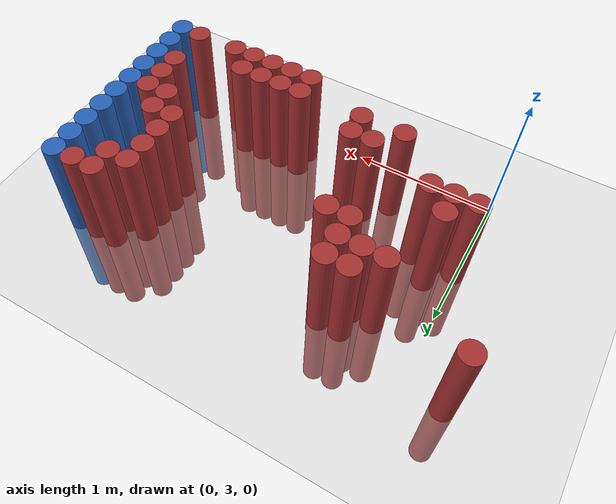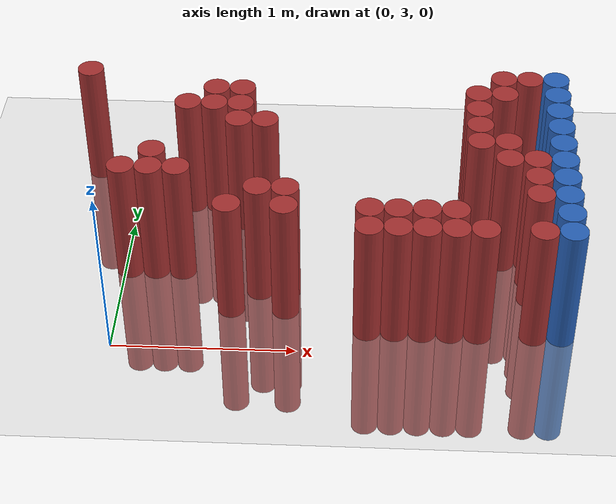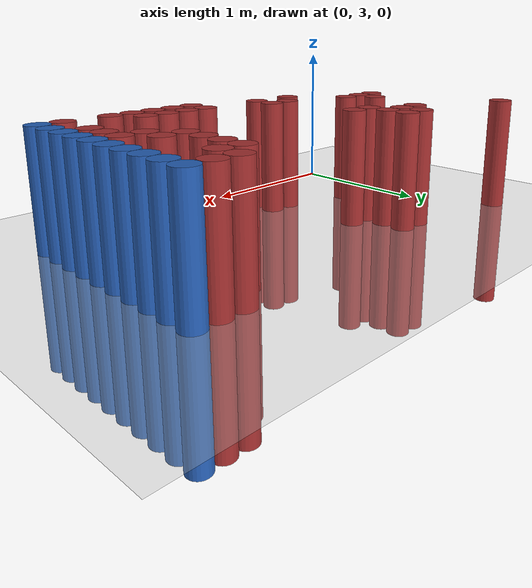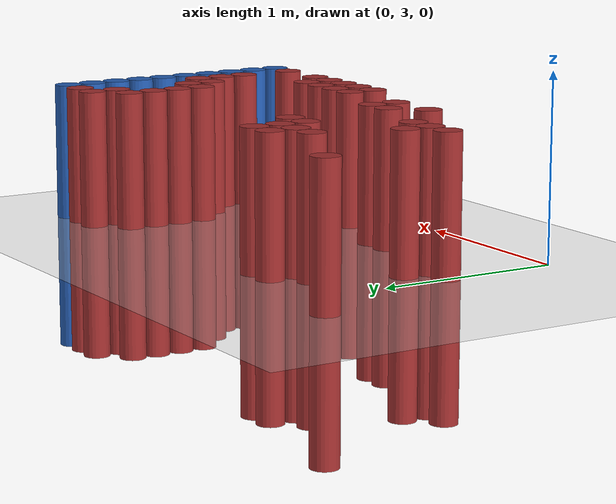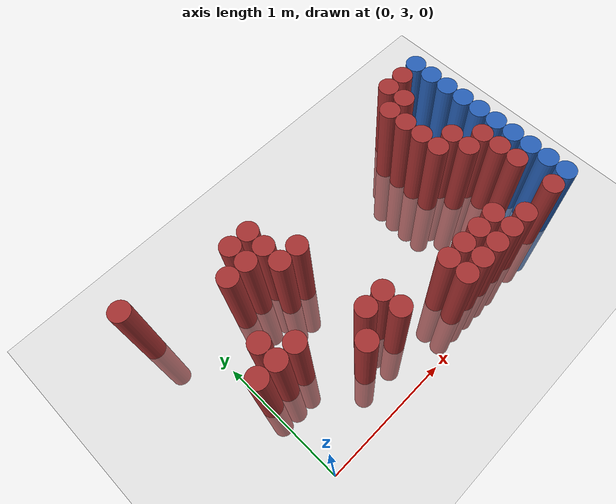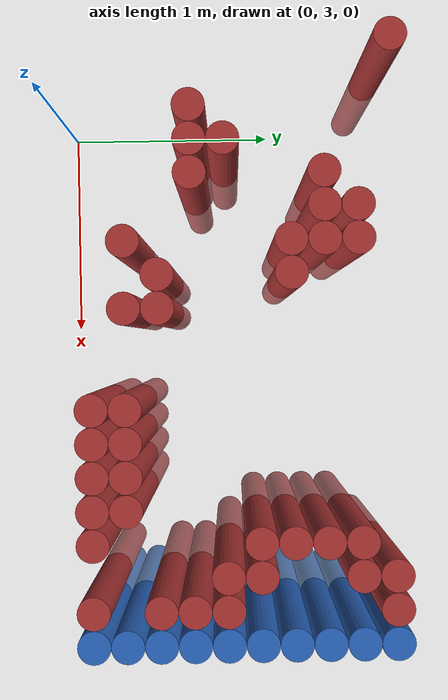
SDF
<sdf version="1.6">
 <world name="default">
  <model name="ground_plane">
   <static>1</static>
   <link name="link">
    <collision name="collision">
     <geometry><plane><normal>0 0 1</normal><size>100 100</size></plane></geometry>
     <surface><friction><ode><mu>100</mu><mu2>50</mu2></ode></friction></surface>
    </collision>
    <visual name="visual">
     <cast_shadows>0</cast_shadows>
     <geometry><plane><normal>0 0 1</normal><size>100 100</size></plane></geometry>
     <material>
      <script><uri>file://media/materials/scripts/gazebo.material</uri><name>Gazebo/Grey</name></script>
     </material>
    </visual>
   </link>
  </model>
  <model name="unit_cylinder_173">
   <static>1</static>
   <pose>-0.275000 4.525000 0.000000 0.000000 0.000000 0.000000</pose>
   <link name="link">
    <inertial>
     <mass>1</mass>
     <inertia><ixx>0.145833</ixx><ixy>0</ixy><ixz>0</ixz><iyy>0.145833</iyy><iyz>0</iyz><izz>0.125</izz></inertia>
    </inertial>
    <collision name="collision">
     <geometry><cylinder><radius>0.075000</radius><length>1.5</length></cylinder></geometry>
    </collision>
    <visual name="visual">
     <geometry><cylinder><radius>0.075000</radius><length>1.5</length></cylinder></geometry>
     <material>
      <ambient>0.648000 0.192000 0.192000 1</ambient>
      <diffuse>0.648000 0.192000 0.192000 1</diffuse>
     </material>
     <material>
      <script><name>Gazebo/Grey</name><uri>file://media/materials/scripts/gazebo.material</uri></script>
     </material>
    </visual>
   </link>
  </model>
  <model name="unit_cylinder_174">
   <static>1</static>
   <pose>0.025000 3.625000 0.000000 0.000000 0.000000 0.000000</pose>
   <link name="link">
    <inertial>
     <mass>1</mass>
     <inertia><ixx>0.145833</ixx><ixy>0</ixy><ixz>0</ixz><iyy>0.145833</iyy><iyz>0</iyz><izz>0.125</izz></inertia>
    </inertial>
    <collision name="collision">
     <geometry><cylinder><radius>0.075000</radius><length>1.5</length></cylinder></geometry>
    </collision>
    <visual name="visual">
     <geometry><cylinder><radius>0.075000</radius><length>1.5</length></cylinder></geometry>
     <material>
      <ambient>0.648000 0.192000 0.192000 1</ambient>
      <diffuse>0.648000 0.192000 0.192000 1</diffuse>
     </material>
     <material>
      <script><name>Gazebo/Grey</name><uri>file://media/materials/scripts/gazebo.material</uri></script>
     </material>
    </visual>
   </link>
  </model>
  <model name="unit_cylinder_176">
   <static>1</static>
   <pose>0.175000 3.625000 0.000000 0.000000 0.000000 0.000000</pose>
   <link name="link">
    <inertial>
     <mass>1</mass>
     <inertia><ixx>0.145833</ixx><ixy>0</ixy><ixz>0</ixz><iyy>0.145833</iyy><iyz>0</iyz><izz>0.125</izz></inertia>
    </inertial>
    <collision name="collision">
     <geometry><cylinder><radius>0.075000</radius><length>1.5</length></cylinder></geometry>
    </collision>
    <visual name="visual">
     <geometry><cylinder><radius>0.075000</radius><length>1.5</length></cylinder></geometry>
     <material>
      <ambient>0.648000 0.192000 0.192000 1</ambient>
      <diffuse>0.648000 0.192000 0.192000 1</diffuse>
     </material>
     <material>
      <script><name>Gazebo/Grey</name><uri>file://media/materials/scripts/gazebo.material</uri></script>
     </material>
    </visual>
   </link>
  </model>
  <model name="unit_cylinder_177">
   <static>1</static>
   <pose>0.175000 3.775000 0.000000 0.000000 0.000000 0.000000</pose>
   <link name="link">
    <inertial>
     <mass>1</mass>
     <inertia><ixx>0.145833</ixx><ixy>0</ixy><ixz>0</ixz><iyy>0.145833</iyy><iyz>0</iyz><izz>0.125</izz></inertia>
    </inertial>
    <collision name="collision">
     <geometry><cylinder><radius>0.075000</radius><length>1.5</length></cylinder></geometry>
    </collision>
    <visual name="visual">
     <geometry><cylinder><radius>0.075000</radius><length>1.5</length></cylinder></geometry>
     <material>
      <ambient>0.648000 0.192000 0.192000 1</ambient>
      <diffuse>0.648000 0.192000 0.192000 1</diffuse>
     </material>
     <material>
      <script><name>Gazebo/Grey</name><uri>file://media/materials/scripts/gazebo.material</uri></script>
     </material>
    </visual>
   </link>
  </model>
  <model name="unit_cylinder_180">
   <static>1</static>
   <pose>0.325000 3.625000 0.000000 0.000000 0.000000 0.000000</pose>
   <link name="link">
    <inertial>
     <mass>1</mass>
     <inertia><ixx>0.145833</ixx><ixy>0</ixy><ixz>0</ixz><iyy>0.145833</iyy><iyz>0</iyz><izz>0.125</izz></inertia>
    </inertial>
    <collision name="collision">
     <geometry><cylinder><radius>0.075000</radius><length>1.5</length></cylinder></geometry>
    </collision>
    <visual name="visual">
     <geometry><cylinder><radius>0.075000</radius><length>1.5</length></cylinder></geometry>
     <material>
      <ambient>0.648000 0.192000 0.192000 1</ambient>
      <diffuse>0.648000 0.192000 0.192000 1</diffuse>
     </material>
     <material>
      <script><name>Gazebo/Grey</name><uri>file://media/materials/scripts/gazebo.material</uri></script>
     </material>
    </visual>
   </link>
  </model>
  <model name="unit_cylinder_181">
   <static>1</static>
   <pose>0.325000 4.225000 0.000000 0.000000 0.000000 0.000000</pose>
   <link name="link">
    <inertial>
     <mass>1</mass>
     <inertia><ixx>0.145833</ixx><ixy>0</ixy><ixz>0</ixz><iyy>0.145833</iyy><iyz>0</iyz><izz>0.125</izz></inertia>
    </inertial>
    <collision name="collision">
     <geometry><cylinder><radius>0.075000</radius><length>1.5</length></cylinder></geometry>
    </collision>
    <visual name="visual">
     <geometry><cylinder><radius>0.075000</radius><length>1.5</length></cylinder></geometry>
     <material>
      <ambient>0.648000 0.192000 0.192000 1</ambient>
      <diffuse>0.648000 0.192000 0.192000 1</diffuse>
     </material>
     <material>
      <script><name>Gazebo/Grey</name><uri>file://media/materials/scripts/gazebo.material</uri></script>
     </material>
    </visual>
   </link>
  </model>
  <model name="unit_cylinder_184">
   <static>1</static>
   <pose>0.475000 4.225000 0.000000 0.000000 0.000000 0.000000</pose>
   <link name="link">
    <inertial>
     <mass>1</mass>
     <inertia><ixx>0.145833</ixx><ixy>0</ixy><ixz>0</ixz><iyy>0.145833</iyy><iyz>0</iyz><izz>0.125</izz></inertia>
    </inertial>
    <collision name="collision">
     <geometry><cylinder><radius>0.075000</radius><length>1.5</length></cylinder></geometry>
    </collision>
    <visual name="visual">
     <geometry><cylinder><radius>0.075000</radius><length>1.5</length></cylinder></geometry>
     <material>
      <ambient>0.648000 0.192000 0.192000 1</ambient>
      <diffuse>0.648000 0.192000 0.192000 1</diffuse>
     </material>
     <material>
      <script><name>Gazebo/Grey</name><uri>file://media/materials/scripts/gazebo.material</uri></script>
     </material>
    </visual>
   </link>
  </model>
  <model name="unit_cylinder_185">
   <static>1</static>
   <pose>0.475000 4.375000 0.000000 0.000000 0.000000 0.000000</pose>
   <link name="link">
    <inertial>
     <mass>1</mass>
     <inertia><ixx>0.145833</ixx><ixy>0</ixy><ixz>0</ixz><iyy>0.145833</iyy><iyz>0</iyz><izz>0.125</izz></inertia>
    </inertial>
    <collision name="collision">
     <geometry><cylinder><radius>0.075000</radius><length>1.5</length></cylinder></geometry>
    </collision>
    <visual name="visual">
     <geometry><cylinder><radius>0.075000</radius><length>1.5</length></cylinder></geometry>
     <material>
      <ambient>0.648000 0.192000 0.192000 1</ambient>
      <diffuse>0.648000 0.192000 0.192000 1</diffuse>
     </material>
     <material>
      <script><name>Gazebo/Grey</name><uri>file://media/materials/scripts/gazebo.material</uri></script>
     </material>
    </visual>
   </link>
  </model>
  <model name="unit_cylinder_186">
   <static>1</static>
   <pose>0.625000 3.325000 0.000000 0.000000 0.000000 0.000000</pose>
   <link name="link">
    <inertial>
     <mass>1</mass>
     <inertia><ixx>0.145833</ixx><ixy>0</ixy><ixz>0</ixz><iyy>0.145833</iyy><iyz>0</iyz><izz>0.125</izz></inertia>
    </inertial>
    <collision name="collision">
     <geometry><cylinder><radius>0.075000</radius><length>1.5</length></cylinder></geometry>
    </collision>
    <visual name="visual">
     <geometry><cylinder><radius>0.075000</radius><length>1.5</length></cylinder></geometry>
     <material>
      <ambient>0.648000 0.192000 0.192000 1</ambient>
      <diffuse>0.648000 0.192000 0.192000 1</diffuse>
     </material>
     <material>
      <script><name>Gazebo/Grey</name><uri>file://media/materials/scripts/gazebo.material</uri></script>
     </material>
    </visual>
   </link>
  </model>
  <model name="unit_cylinder_187">
   <static>1</static>
   <pose>0.625000 4.075000 0.000000 0.000000 0.000000 0.000000</pose>
   <link name="link">
    <inertial>
     <mass>1</mass>
     <inertia><ixx>0.145833</ixx><ixy>0</ixy><ixz>0</ixz><iyy>0.145833</iyy><iyz>0</iyz><izz>0.125</izz></inertia>
    </inertial>
    <collision name="collision">
     <geometry><cylinder><radius>0.075000</radius><length>1.5</length></cylinder></geometry>
    </collision>
    <visual name="visual">
     <geometry><cylinder><radius>0.075000</radius><length>1.5</length></cylinder></geometry>
     <material>
      <ambient>0.648000 0.192000 0.192000 1</ambient>
      <diffuse>0.648000 0.192000 0.192000 1</diffuse>
     </material>
     <material>
      <script><name>Gazebo/Grey</name><uri>file://media/materials/scripts/gazebo.material</uri></script>
     </material>
    </visual>
   </link>
  </model>
  <model name="unit_cylinder_188">
   <static>1</static>
   <pose>0.625000 4.225000 0.000000 0.000000 0.000000 0.000000</pose>
   <link name="link">
    <inertial>
     <mass>1</mass>
     <inertia><ixx>0.145833</ixx><ixy>0</ixy><ixz>0</ixz><iyy>0.145833</iyy><iyz>0</iyz><izz>0.125</izz></inertia>
    </inertial>
    <collision name="collision">
     <geometry><cylinder><radius>0.075000</radius><length>1.5</length></cylinder></geometry>
    </collision>
    <visual name="visual">
     <geometry><cylinder><radius>0.075000</radius><length>1.5</length></cylinder></geometry>
     <material>
      <ambient>0.648000 0.192000 0.192000 1</ambient>
      <diffuse>0.648000 0.192000 0.192000 1</diffuse>
     </material>
     <material>
      <script><name>Gazebo/Grey</name><uri>file://media/materials/scripts/gazebo.material</uri></script>
     </material>
    </visual>
   </link>
  </model>
  <model name="unit_cylinder_189">
   <static>1</static>
   <pose>0.625000 4.375000 0.000000 0.000000 0.000000 0.000000</pose>
   <link name="link">
    <inertial>
     <mass>1</mass>
     <inertia><ixx>0.145833</ixx><ixy>0</ixy><ixz>0</ixz><iyy>0.145833</iyy><iyz>0</iyz><izz>0.125</izz></inertia>
    </inertial>
    <collision name="collision">
     <geometry><cylinder><radius>0.075000</radius><length>1.5</length></cylinder></geometry>
    </collision>
    <visual name="visual">
     <geometry><cylinder><radius>0.075000</radius><length>1.5</length></cylinder></geometry>
     <material>
      <ambient>0.648000 0.192000 0.192000 1</ambient>
      <diffuse>0.648000 0.192000 0.192000 1</diffuse>
     </material>
     <material>
      <script><name>Gazebo/Grey</name><uri>file://media/materials/scripts/gazebo.material</uri></script>
     </material>
    </visual>
   </link>
  </model>
  <model name="unit_cylinder_192">
   <static>1</static>
   <pose>0.775000 3.475000 0.000000 0.000000 0.000000 0.000000</pose>
   <link name="link">
    <inertial>
     <mass>1</mass>
     <inertia><ixx>0.145833</ixx><ixy>0</ixy><ixz>0</ixz><iyy>0.145833</iyy><iyz>0</iyz><izz>0.125</izz></inertia>
    </inertial>
    <collision name="collision">
     <geometry><cylinder><radius>0.075000</radius><length>1.5</length></cylinder></geometry>
    </collision>
    <visual name="visual">
     <geometry><cylinder><radius>0.075000</radius><length>1.5</length></cylinder></geometry>
     <material>
      <ambient>0.648000 0.192000 0.192000 1</ambient>
      <diffuse>0.648000 0.192000 0.192000 1</diffuse>
     </material>
     <material>
      <script><name>Gazebo/Grey</name><uri>file://media/materials/scripts/gazebo.material</uri></script>
     </material>
    </visual>
   </link>
  </model>
  <model name="unit_cylinder_193">
   <static>1</static>
   <pose>0.775000 4.075000 0.000000 0.000000 0.000000 0.000000</pose>
   <link name="link">
    <inertial>
     <mass>1</mass>
     <inertia><ixx>0.145833</ixx><ixy>0</ixy><ixz>0</ixz><iyy>0.145833</iyy><iyz>0</iyz><izz>0.125</izz></inertia>
    </inertial>
    <collision name="collision">
     <geometry><cylinder><radius>0.075000</radius><length>1.5</length></cylinder></geometry>
    </collision>
    <visual name="visual">
     <geometry><cylinder><radius>0.075000</radius><length>1.5</length></cylinder></geometry>
     <material>
      <ambient>0.648000 0.192000 0.192000 1</ambient>
      <diffuse>0.648000 0.192000 0.192000 1</diffuse>
     </material>
     <material>
      <script><name>Gazebo/Grey</name><uri>file://media/materials/scripts/gazebo.material</uri></script>
     </material>
    </visual>
   </link>
  </model>
  <model name="unit_cylinder_198">
   <static>1</static>
   <pose>0.925000 3.325000 0.000000 0.000000 0.000000 0.000000</pose>
   <link name="link">
    <inertial>
     <mass>1</mass>
     <inertia><ixx>0.145833</ixx><ixy>0</ixy><ixz>0</ixz><iyy>0.145833</iyy><iyz>0</iyz><izz>0.125</izz></inertia>
    </inertial>
    <collision name="collision">
     <geometry><cylinder><radius>0.075000</radius><length>1.5</length></cylinder></geometry>
    </collision>
    <visual name="visual">
     <geometry><cylinder><radius>0.075000</radius><length>1.5</length></cylinder></geometry>
     <material>
      <ambient>0.648000 0.192000 0.192000 1</ambient>
      <diffuse>0.648000 0.192000 0.192000 1</diffuse>
     </material>
     <material>
      <script><name>Gazebo/Grey</name><uri>file://media/materials/scripts/gazebo.material</uri></script>
     </material>
    </visual>
   </link>
  </model>
  <model name="unit_cylinder_199">
   <static>1</static>
   <pose>0.925000 3.475000 0.000000 0.000000 0.000000 0.000000</pose>
   <link name="link">
    <inertial>
     <mass>1</mass>
     <inertia><ixx>0.145833</ixx><ixy>0</ixy><ixz>0</ixz><iyy>0.145833</iyy><iyz>0</iyz><izz>0.125</izz></inertia>
    </inertial>
    <collision name="collision">
     <geometry><cylinder><radius>0.075000</radius><length>1.5</length></cylinder></geometry>
    </collision>
    <visual name="visual">
     <geometry><cylinder><radius>0.075000</radius><length>1.5</length></cylinder></geometry>
     <material>
      <ambient>0.648000 0.192000 0.192000 1</ambient>
      <diffuse>0.648000 0.192000 0.192000 1</diffuse>
     </material>
     <material>
      <script><name>Gazebo/Grey</name><uri>file://media/materials/scripts/gazebo.material</uri></script>
     </material>
    </visual>
   </link>
  </model>
  <model name="unit_cylinder_212">
   <static>1</static>
   <pose>1.375000 3.175000 0.000000 0.000000 0.000000 0.000000</pose>
   <link name="link">
    <inertial>
     <mass>1</mass>
     <inertia><ixx>0.145833</ixx><ixy>0</ixy><ixz>0</ixz><iyy>0.145833</iyy><iyz>0</iyz><izz>0.125</izz></inertia>
    </inertial>
    <collision name="collision">
     <geometry><cylinder><radius>0.075000</radius><length>1.5</length></cylinder></geometry>
    </collision>
    <visual name="visual">
     <geometry><cylinder><radius>0.075000</radius><length>1.5</length></cylinder></geometry>
     <material>
      <ambient>0.648000 0.192000 0.192000 1</ambient>
      <diffuse>0.648000 0.192000 0.192000 1</diffuse>
     </material>
     <material>
      <script><name>Gazebo/Grey</name><uri>file://media/materials/scripts/gazebo.material</uri></script>
     </material>
    </visual>
   </link>
  </model>
  <model name="unit_cylinder_213">
   <static>1</static>
   <pose>1.375000 3.325000 0.000000 0.000000 0.000000 0.000000</pose>
   <link name="link">
    <inertial>
     <mass>1</mass>
     <inertia><ixx>0.145833</ixx><ixy>0</ixy><ixz>0</ixz><iyy>0.145833</iyy><iyz>0</iyz><izz>0.125</izz></inertia>
    </inertial>
    <collision name="collision">
     <geometry><cylinder><radius>0.075000</radius><length>1.5</length></cylinder></geometry>
    </collision>
    <visual name="visual">
     <geometry><cylinder><radius>0.075000</radius><length>1.5</length></cylinder></geometry>
     <material>
      <ambient>0.648000 0.192000 0.192000 1</ambient>
      <diffuse>0.648000 0.192000 0.192000 1</diffuse>
     </material>
     <material>
      <script><name>Gazebo/Grey</name><uri>file://media/materials/scripts/gazebo.material</uri></script>
     </material>
    </visual>
   </link>
  </model>
  <model name="unit_cylinder_215">
   <static>1</static>
   <pose>1.525000 3.175000 0.000000 0.000000 0.000000 0.000000</pose>
   <link name="link">
    <inertial>
     <mass>1</mass>
     <inertia><ixx>0.145833</ixx><ixy>0</ixy><ixz>0</ixz><iyy>0.145833</iyy><iyz>0</iyz><izz>0.125</izz></inertia>
    </inertial>
    <collision name="collision">
     <geometry><cylinder><radius>0.075000</radius><length>1.5</length></cylinder></geometry>
    </collision>
    <visual name="visual">
     <geometry><cylinder><radius>0.075000</radius><length>1.5</length></cylinder></geometry>
     <material>
      <ambient>0.648000 0.192000 0.192000 1</ambient>
      <diffuse>0.648000 0.192000 0.192000 1</diffuse>
     </material>
     <material>
      <script><name>Gazebo/Grey</name><uri>file://media/materials/scripts/gazebo.material</uri></script>
     </material>
    </visual>
   </link>
  </model>
  <model name="unit_cylinder_216">
   <static>1</static>
   <pose>1.525000 3.325000 0.000000 0.000000 0.000000 0.000000</pose>
   <link name="link">
    <inertial>
     <mass>1</mass>
     <inertia><ixx>0.145833</ixx><ixy>0</ixy><ixz>0</ixz><iyy>0.145833</iyy><iyz>0</iyz><izz>0.125</izz></inertia>
    </inertial>
    <collision name="collision">
     <geometry><cylinder><radius>0.075000</radius><length>1.5</length></cylinder></geometry>
    </collision>
    <visual name="visual">
     <geometry><cylinder><radius>0.075000</radius><length>1.5</length></cylinder></geometry>
     <material>
      <ambient>0.648000 0.192000 0.192000 1</ambient>
      <diffuse>0.648000 0.192000 0.192000 1</diffuse>
     </material>
     <material>
      <script><name>Gazebo/Grey</name><uri>file://media/materials/scripts/gazebo.material</uri></script>
     </material>
    </visual>
   </link>
  </model>
  <model name="unit_cylinder_218">
   <static>1</static>
   <pose>1.675000 3.175000 0.000000 0.000000 0.000000 0.000000</pose>
   <link name="link">
    <inertial>
     <mass>1</mass>
     <inertia><ixx>0.145833</ixx><ixy>0</ixy><ixz>0</ixz><iyy>0.145833</iyy><iyz>0</iyz><izz>0.125</izz></inertia>
    </inertial>
    <collision name="collision">
     <geometry><cylinder><radius>0.075000</radius><length>1.5</length></cylinder></geometry>
    </collision>
    <visual name="visual">
     <geometry><cylinder><radius>0.075000</radius><length>1.5</length></cylinder></geometry>
     <material>
      <ambient>0.648000 0.192000 0.192000 1</ambient>
      <diffuse>0.648000 0.192000 0.192000 1</diffuse>
     </material>
     <material>
      <script><name>Gazebo/Grey</name><uri>file://media/materials/scripts/gazebo.material</uri></script>
     </material>
    </visual>
   </link>
  </model>
  <model name="unit_cylinder_219">
   <static>1</static>
   <pose>1.675000 3.325000 0.000000 0.000000 0.000000 0.000000</pose>
   <link name="link">
    <inertial>
     <mass>1</mass>
     <inertia><ixx>0.145833</ixx><ixy>0</ixy><ixz>0</ixz><iyy>0.145833</iyy><iyz>0</iyz><izz>0.125</izz></inertia>
    </inertial>
    <collision name="collision">
     <geometry><cylinder><radius>0.075000</radius><length>1.5</length></cylinder></geometry>
    </collision>
    <visual name="visual">
     <geometry><cylinder><radius>0.075000</radius><length>1.5</length></cylinder></geometry>
     <material>
      <ambient>0.648000 0.192000 0.192000 1</ambient>
      <diffuse>0.648000 0.192000 0.192000 1</diffuse>
     </material>
     <material>
      <script><name>Gazebo/Grey</name><uri>file://media/materials/scripts/gazebo.material</uri></script>
     </material>
    </visual>
   </link>
  </model>
  <model name="unit_cylinder_223">
   <static>1</static>
   <pose>1.825000 3.175000 0.000000 0.000000 0.000000 0.000000</pose>
   <link name="link">
    <inertial>
     <mass>1</mass>
     <inertia><ixx>0.145833</ixx><ixy>0</ixy><ixz>0</ixz><iyy>0.145833</iyy><iyz>0</iyz><izz>0.125</izz></inertia>
    </inertial>
    <collision name="collision">
     <geometry><cylinder><radius>0.075000</radius><length>1.5</length></cylinder></geometry>
    </collision>
    <visual name="visual">
     <geometry><cylinder><radius>0.075000</radius><length>1.5</length></cylinder></geometry>
     <material>
      <ambient>0.648000 0.192000 0.192000 1</ambient>
      <diffuse>0.648000 0.192000 0.192000 1</diffuse>
     </material>
     <material>
      <script><name>Gazebo/Grey</name><uri>file://media/materials/scripts/gazebo.material</uri></script>
     </material>
    </visual>
   </link>
  </model>
  <model name="unit_cylinder_224">
   <static>1</static>
   <pose>1.825000 3.325000 0.000000 0.000000 0.000000 0.000000</pose>
   <link name="link">
    <inertial>
     <mass>1</mass>
     <inertia><ixx>0.145833</ixx><ixy>0</ixy><ixz>0</ixz><iyy>0.145833</iyy><iyz>0</iyz><izz>0.125</izz></inertia>
    </inertial>
    <collision name="collision">
     <geometry><cylinder><radius>0.075000</radius><length>1.5</length></cylinder></geometry>
    </collision>
    <visual name="visual">
     <geometry><cylinder><radius>0.075000</radius><length>1.5</length></cylinder></geometry>
     <material>
      <ambient>0.648000 0.192000 0.192000 1</ambient>
      <diffuse>0.648000 0.192000 0.192000 1</diffuse>
     </material>
     <material>
      <script><name>Gazebo/Grey</name><uri>file://media/materials/scripts/gazebo.material</uri></script>
     </material>
    </visual>
   </link>
  </model>
  <model name="unit_cylinder_228">
   <static>1</static>
   <pose>1.975000 3.175000 0.000000 0.000000 0.000000 0.000000</pose>
   <link name="link">
    <inertial>
     <mass>1</mass>
     <inertia><ixx>0.145833</ixx><ixy>0</ixy><ixz>0</ixz><iyy>0.145833</iyy><iyz>0</iyz><izz>0.125</izz></inertia>
    </inertial>
    <collision name="collision">
     <geometry><cylinder><radius>0.075000</radius><length>1.5</length></cylinder></geometry>
    </collision>
    <visual name="visual">
     <geometry><cylinder><radius>0.075000</radius><length>1.5</length></cylinder></geometry>
     <material>
      <ambient>0.648000 0.192000 0.192000 1</ambient>
      <diffuse>0.648000 0.192000 0.192000 1</diffuse>
     </material>
     <material>
      <script><name>Gazebo/Grey</name><uri>file://media/materials/scripts/gazebo.material</uri></script>
     </material>
    </visual>
   </link>
  </model>
  <model name="unit_cylinder_229">
   <static>1</static>
   <pose>1.975000 3.925000 0.000000 0.000000 0.000000 0.000000</pose>
   <link name="link">
    <inertial>
     <mass>1</mass>
     <inertia><ixx>0.145833</ixx><ixy>0</ixy><ixz>0</ixz><iyy>0.145833</iyy><iyz>0</iyz><izz>0.125</izz></inertia>
    </inertial>
    <collision name="collision">
     <geometry><cylinder><radius>0.075000</radius><length>1.5</length></cylinder></geometry>
    </collision>
    <visual name="visual">
     <geometry><cylinder><radius>0.075000</radius><length>1.5</length></cylinder></geometry>
     <material>
      <ambient>0.648000 0.192000 0.192000 1</ambient>
      <diffuse>0.648000 0.192000 0.192000 1</diffuse>
     </material>
     <material>
      <script><name>Gazebo/Grey</name><uri>file://media/materials/scripts/gazebo.material</uri></script>
     </material>
    </visual>
   </link>
  </model>
  <model name="unit_cylinder_230">
   <static>1</static>
   <pose>1.975000 4.075000 0.000000 0.000000 0.000000 0.000000</pose>
   <link name="link">
    <inertial>
     <mass>1</mass>
     <inertia><ixx>0.145833</ixx><ixy>0</ixy><ixz>0</ixz><iyy>0.145833</iyy><iyz>0</iyz><izz>0.125</izz></inertia>
    </inertial>
    <collision name="collision">
     <geometry><cylinder><radius>0.075000</radius><length>1.5</length></cylinder></geometry>
    </collision>
    <visual name="visual">
     <geometry><cylinder><radius>0.075000</radius><length>1.5</length></cylinder></geometry>
     <material>
      <ambient>0.648000 0.192000 0.192000 1</ambient>
      <diffuse>0.648000 0.192000 0.192000 1</diffuse>
     </material>
     <material>
      <script><name>Gazebo/Grey</name><uri>file://media/materials/scripts/gazebo.material</uri></script>
     </material>
    </visual>
   </link>
  </model>
  <model name="unit_cylinder_231">
   <static>1</static>
   <pose>1.975000 4.225000 0.000000 0.000000 0.000000 0.000000</pose>
   <link name="link">
    <inertial>
     <mass>1</mass>
     <inertia><ixx>0.145833</ixx><ixy>0</ixy><ixz>0</ixz><iyy>0.145833</iyy><iyz>0</iyz><izz>0.125</izz></inertia>
    </inertial>
    <collision name="collision">
     <geometry><cylinder><radius>0.075000</radius><length>1.5</length></cylinder></geometry>
    </collision>
    <visual name="visual">
     <geometry><cylinder><radius>0.075000</radius><length>1.5</length></cylinder></geometry>
     <material>
      <ambient>0.648000 0.192000 0.192000 1</ambient>
      <diffuse>0.648000 0.192000 0.192000 1</diffuse>
     </material>
     <material>
      <script><name>Gazebo/Grey</name><uri>file://media/materials/scripts/gazebo.material</uri></script>
     </material>
    </visual>
   </link>
  </model>
  <model name="unit_cylinder_232">
   <static>1</static>
   <pose>1.975000 4.375000 0.000000 0.000000 0.000000 0.000000</pose>
   <link name="link">
    <inertial>
     <mass>1</mass>
     <inertia><ixx>0.145833</ixx><ixy>0</ixy><ixz>0</ixz><iyy>0.145833</iyy><iyz>0</iyz><izz>0.125</izz></inertia>
    </inertial>
    <collision name="collision">
     <geometry><cylinder><radius>0.075000</radius><length>1.5</length></cylinder></geometry>
    </collision>
    <visual name="visual">
     <geometry><cylinder><radius>0.075000</radius><length>1.5</length></cylinder></geometry>
     <material>
      <ambient>0.648000 0.192000 0.192000 1</ambient>
      <diffuse>0.648000 0.192000 0.192000 1</diffuse>
     </material>
     <material>
      <script><name>Gazebo/Grey</name><uri>file://media/materials/scripts/gazebo.material</uri></script>
     </material>
    </visual>
   </link>
  </model>
  <model name="unit_cylinder_239">
   <static>1</static>
   <pose>2.125000 3.775000 0.000000 0.000000 0.000000 0.000000</pose>
   <link name="link">
    <inertial>
     <mass>1</mass>
     <inertia><ixx>0.145833</ixx><ixy>0</ixy><ixz>0</ixz><iyy>0.145833</iyy><iyz>0</iyz><izz>0.125</izz></inertia>
    </inertial>
    <collision name="collision">
     <geometry><cylinder><radius>0.075000</radius><length>1.5</length></cylinder></geometry>
    </collision>
    <visual name="visual">
     <geometry><cylinder><radius>0.075000</radius><length>1.5</length></cylinder></geometry>
     <material>
      <ambient>0.648000 0.192000 0.192000 1</ambient>
      <diffuse>0.648000 0.192000 0.192000 1</diffuse>
     </material>
     <material>
      <script><name>Gazebo/Grey</name><uri>file://media/materials/scripts/gazebo.material</uri></script>
     </material>
    </visual>
   </link>
  </model>
  <model name="unit_cylinder_240">
   <static>1</static>
   <pose>2.125000 3.925000 0.000000 0.000000 0.000000 0.000000</pose>
   <link name="link">
    <inertial>
     <mass>1</mass>
     <inertia><ixx>0.145833</ixx><ixy>0</ixy><ixz>0</ixz><iyy>0.145833</iyy><iyz>0</iyz><izz>0.125</izz></inertia>
    </inertial>
    <collision name="collision">
     <geometry><cylinder><radius>0.075000</radius><length>1.5</length></cylinder></geometry>
    </collision>
    <visual name="visual">
     <geometry><cylinder><radius>0.075000</radius><length>1.5</length></cylinder></geometry>
     <material>
      <ambient>0.648000 0.192000 0.192000 1</ambient>
      <diffuse>0.648000 0.192000 0.192000 1</diffuse>
     </material>
     <material>
      <script><name>Gazebo/Grey</name><uri>file://media/materials/scripts/gazebo.material</uri></script>
     </material>
    </visual>
   </link>
  </model>
  <model name="unit_cylinder_241">
   <static>1</static>
   <pose>2.125000 4.375000 0.000000 0.000000 0.000000 0.000000</pose>
   <link name="link">
    <inertial>
     <mass>1</mass>
     <inertia><ixx>0.145833</ixx><ixy>0</ixy><ixz>0</ixz><iyy>0.145833</iyy><iyz>0</iyz><izz>0.125</izz></inertia>
    </inertial>
    <collision name="collision">
     <geometry><cylinder><radius>0.075000</radius><length>1.5</length></cylinder></geometry>
    </collision>
    <visual name="visual">
     <geometry><cylinder><radius>0.075000</radius><length>1.5</length></cylinder></geometry>
     <material>
      <ambient>0.648000 0.192000 0.192000 1</ambient>
      <diffuse>0.648000 0.192000 0.192000 1</diffuse>
     </material>
     <material>
      <script><name>Gazebo/Grey</name><uri>file://media/materials/scripts/gazebo.material</uri></script>
     </material>
    </visual>
   </link>
  </model>
  <model name="unit_cylinder_242">
   <static>1</static>
   <pose>2.125000 4.525000 0.000000 0.000000 0.000000 0.000000</pose>
   <link name="link">
    <inertial>
     <mass>1</mass>
     <inertia><ixx>0.145833</ixx><ixy>0</ixy><ixz>0</ixz><iyy>0.145833</iyy><iyz>0</iyz><izz>0.125</izz></inertia>
    </inertial>
    <collision name="collision">
     <geometry><cylinder><radius>0.075000</radius><length>1.5</length></cylinder></geometry>
    </collision>
    <visual name="visual">
     <geometry><cylinder><radius>0.075000</radius><length>1.5</length></cylinder></geometry>
     <material>
      <ambient>0.648000 0.192000 0.192000 1</ambient>
      <diffuse>0.648000 0.192000 0.192000 1</diffuse>
     </material>
     <material>
      <script><name>Gazebo/Grey</name><uri>file://media/materials/scripts/gazebo.material</uri></script>
     </material>
    </visual>
   </link>
  </model>
  <model name="unit_cylinder_252">
   <static>1</static>
   <pose>2.275000 3.175000 0.000000 0.000000 0.000000 0.000000</pose>
   <link name="link">
    <inertial>
     <mass>1</mass>
     <inertia><ixx>0.145833</ixx><ixy>0</ixy><ixz>0</ixz><iyy>0.145833</iyy><iyz>0</iyz><izz>0.125</izz></inertia>
    </inertial>
    <collision name="collision">
     <geometry><cylinder><radius>0.075000</radius><length>1.5</length></cylinder></geometry>
    </collision>
    <visual name="visual">
     <geometry><cylinder><radius>0.075000</radius><length>1.5</length></cylinder></geometry>
     <material>
      <ambient>0.648000 0.192000 0.192000 1</ambient>
      <diffuse>0.648000 0.192000 0.192000 1</diffuse>
     </material>
     <material>
      <script><name>Gazebo/Grey</name><uri>file://media/materials/scripts/gazebo.material</uri></script>
     </material>
    </visual>
   </link>
  </model>
  <model name="unit_cylinder_253">
   <static>1</static>
   <pose>2.275000 3.475000 0.000000 0.000000 0.000000 0.000000</pose>
   <link name="link">
    <inertial>
     <mass>1</mass>
     <inertia><ixx>0.145833</ixx><ixy>0</ixy><ixz>0</ixz><iyy>0.145833</iyy><iyz>0</iyz><izz>0.125</izz></inertia>
    </inertial>
    <collision name="collision">
     <geometry><cylinder><radius>0.075000</radius><length>1.5</length></cylinder></geometry>
    </collision>
    <visual name="visual">
     <geometry><cylinder><radius>0.075000</radius><length>1.5</length></cylinder></geometry>
     <material>
      <ambient>0.648000 0.192000 0.192000 1</ambient>
      <diffuse>0.648000 0.192000 0.192000 1</diffuse>
     </material>
     <material>
      <script><name>Gazebo/Grey</name><uri>file://media/materials/scripts/gazebo.material</uri></script>
     </material>
    </visual>
   </link>
  </model>
  <model name="unit_cylinder_254">
   <static>1</static>
   <pose>2.275000 3.625000 0.000000 0.000000 0.000000 0.000000</pose>
   <link name="link">
    <inertial>
     <mass>1</mass>
     <inertia><ixx>0.145833</ixx><ixy>0</ixy><ixz>0</ixz><iyy>0.145833</iyy><iyz>0</iyz><izz>0.125</izz></inertia>
    </inertial>
    <collision name="collision">
     <geometry><cylinder><radius>0.075000</radius><length>1.5</length></cylinder></geometry>
    </collision>
    <visual name="visual">
     <geometry><cylinder><radius>0.075000</radius><length>1.5</length></cylinder></geometry>
     <material>
      <ambient>0.648000 0.192000 0.192000 1</ambient>
      <diffuse>0.648000 0.192000 0.192000 1</diffuse>
     </material>
     <material>
      <script><name>Gazebo/Grey</name><uri>file://media/materials/scripts/gazebo.material</uri></script>
     </material>
    </visual>
   </link>
  </model>
  <model name="unit_cylinder_255">
   <static>1</static>
   <pose>2.275000 3.775000 0.000000 0.000000 0.000000 0.000000</pose>
   <link name="link">
    <inertial>
     <mass>1</mass>
     <inertia><ixx>0.145833</ixx><ixy>0</ixy><ixz>0</ixz><iyy>0.145833</iyy><iyz>0</iyz><izz>0.125</izz></inertia>
    </inertial>
    <collision name="collision">
     <geometry><cylinder><radius>0.075000</radius><length>1.5</length></cylinder></geometry>
    </collision>
    <visual name="visual">
     <geometry><cylinder><radius>0.075000</radius><length>1.5</length></cylinder></geometry>
     <material>
      <ambient>0.648000 0.192000 0.192000 1</ambient>
      <diffuse>0.648000 0.192000 0.192000 1</diffuse>
     </material>
     <material>
      <script><name>Gazebo/Grey</name><uri>file://media/materials/scripts/gazebo.material</uri></script>
     </material>
    </visual>
   </link>
  </model>
  <model name="unit_cylinder_256">
   <static>1</static>
   <pose>2.275000 4.525000 0.000000 0.000000 0.000000 0.000000</pose>
   <link name="link">
    <inertial>
     <mass>1</mass>
     <inertia><ixx>0.145833</ixx><ixy>0</ixy><ixz>0</ixz><iyy>0.145833</iyy><iyz>0</iyz><izz>0.125</izz></inertia>
    </inertial>
    <collision name="collision">
     <geometry><cylinder><radius>0.075000</radius><length>1.5</length></cylinder></geometry>
    </collision>
    <visual name="visual">
     <geometry><cylinder><radius>0.075000</radius><length>1.5</length></cylinder></geometry>
     <material>
      <ambient>0.648000 0.192000 0.192000 1</ambient>
      <diffuse>0.648000 0.192000 0.192000 1</diffuse>
     </material>
     <material>
      <script><name>Gazebo/Grey</name><uri>file://media/materials/scripts/gazebo.material</uri></script>
     </material>
    </visual>
   </link>
  </model>
  <model name="unit_cylinder_277">
   <static>1</static>
   <pose>2.425000 3.175000 0.000000 0.000000 0.000000 0.000000</pose>
   <link name="link">
    <inertial>
     <mass>1</mass>
     <inertia><ixx>0.145833</ixx><ixy>0</ixy><ixz>0</ixz><iyy>0.145833</iyy><iyz>0</iyz><izz>0.125</izz></inertia>
    </inertial>
    <collision name="collision">
     <geometry><cylinder><radius>0.075000</radius><length>1.5</length></cylinder></geometry>
    </collision>
    <visual name="visual">
     <geometry><cylinder><radius>0.075000</radius><length>1.5</length></cylinder></geometry>
     <material>
      <ambient>0.152000 0.379000 0.720000 1</ambient>
      <diffuse>0.152000 0.379000 0.720000 1</diffuse>
     </material>
     <material>
      <script><name>Gazebo/Grey</name><uri>file://media/materials/scripts/gazebo.material</uri></script>
     </material>
    </visual>
   </link>
  </model>
  <model name="unit_cylinder_278">
   <static>1</static>
   <pose>2.425000 3.325000 0.000000 0.000000 0.000000 0.000000</pose>
   <link name="link">
    <inertial>
     <mass>1</mass>
     <inertia><ixx>0.145833</ixx><ixy>0</ixy><ixz>0</ixz><iyy>0.145833</iyy><iyz>0</iyz><izz>0.125</izz></inertia>
    </inertial>
    <collision name="collision">
     <geometry><cylinder><radius>0.075000</radius><length>1.5</length></cylinder></geometry>
    </collision>
    <visual name="visual">
     <geometry><cylinder><radius>0.075000</radius><length>1.5</length></cylinder></geometry>
     <material>
      <ambient>0.152000 0.379000 0.720000 1</ambient>
      <diffuse>0.152000 0.379000 0.720000 1</diffuse>
     </material>
     <material>
      <script><name>Gazebo/Grey</name><uri>file://media/materials/scripts/gazebo.material</uri></script>
     </material>
    </visual>
   </link>
  </model>
  <model name="unit_cylinder_279">
   <static>1</static>
   <pose>2.425000 3.475000 0.000000 0.000000 0.000000 0.000000</pose>
   <link name="link">
    <inertial>
     <mass>1</mass>
     <inertia><ixx>0.145833</ixx><ixy>0</ixy><ixz>0</ixz><iyy>0.145833</iyy><iyz>0</iyz><izz>0.125</izz></inertia>
    </inertial>
    <collision name="collision">
     <geometry><cylinder><radius>0.075000</radius><length>1.5</length></cylinder></geometry>
    </collision>
    <visual name="visual">
     <geometry><cylinder><radius>0.075000</radius><length>1.5</length></cylinder></geometry>
     <material>
      <ambient>0.152000 0.379000 0.720000 1</ambient>
      <diffuse>0.152000 0.379000 0.720000 1</diffuse>
     </material>
     <material>
      <script><name>Gazebo/Grey</name><uri>file://media/materials/scripts/gazebo.material</uri></script>
     </material>
    </visual>
   </link>
  </model>
  <model name="unit_cylinder_280">
   <static>1</static>
   <pose>2.425000 3.625000 0.000000 0.000000 0.000000 0.000000</pose>
   <link name="link">
    <inertial>
     <mass>1</mass>
     <inertia><ixx>0.145833</ixx><ixy>0</ixy><ixz>0</ixz><iyy>0.145833</iyy><iyz>0</iyz><izz>0.125</izz></inertia>
    </inertial>
    <collision name="collision">
     <geometry><cylinder><radius>0.075000</radius><length>1.5</length></cylinder></geometry>
    </collision>
    <visual name="visual">
     <geometry><cylinder><radius>0.075000</radius><length>1.5</length></cylinder></geometry>
     <material>
      <ambient>0.152000 0.379000 0.720000 1</ambient>
      <diffuse>0.152000 0.379000 0.720000 1</diffuse>
     </material>
     <material>
      <script><name>Gazebo/Grey</name><uri>file://media/materials/scripts/gazebo.material</uri></script>
     </material>
    </visual>
   </link>
  </model>
  <model name="unit_cylinder_281">
   <static>1</static>
   <pose>2.425000 3.775000 0.000000 0.000000 0.000000 0.000000</pose>
   <link name="link">
    <inertial>
     <mass>1</mass>
     <inertia><ixx>0.145833</ixx><ixy>0</ixy><ixz>0</ixz><iyy>0.145833</iyy><iyz>0</iyz><izz>0.125</izz></inertia>
    </inertial>
    <collision name="collision">
     <geometry><cylinder><radius>0.075000</radius><length>1.5</length></cylinder></geometry>
    </collision>
    <visual name="visual">
     <geometry><cylinder><radius>0.075000</radius><length>1.5</length></cylinder></geometry>
     <material>
      <ambient>0.152000 0.379000 0.720000 1</ambient>
      <diffuse>0.152000 0.379000 0.720000 1</diffuse>
     </material>
     <material>
      <script><name>Gazebo/Grey</name><uri>file://media/materials/scripts/gazebo.material</uri></script>
     </material>
    </visual>
   </link>
  </model>
  <model name="unit_cylinder_282">
   <static>1</static>
   <pose>2.425000 3.925000 0.000000 0.000000 0.000000 0.000000</pose>
   <link name="link">
    <inertial>
     <mass>1</mass>
     <inertia><ixx>0.145833</ixx><ixy>0</ixy><ixz>0</ixz><iyy>0.145833</iyy><iyz>0</iyz><izz>0.125</izz></inertia>
    </inertial>
    <collision name="collision">
     <geometry><cylinder><radius>0.075000</radius><length>1.5</length></cylinder></geometry>
    </collision>
    <visual name="visual">
     <geometry><cylinder><radius>0.075000</radius><length>1.5</length></cylinder></geometry>
     <material>
      <ambient>0.152000 0.379000 0.720000 1</ambient>
      <diffuse>0.152000 0.379000 0.720000 1</diffuse>
     </material>
     <material>
      <script><name>Gazebo/Grey</name><uri>file://media/materials/scripts/gazebo.material</uri></script>
     </material>
    </visual>
   </link>
  </model>
  <model name="unit_cylinder_283">
   <static>1</static>
   <pose>2.425000 4.075000 0.000000 0.000000 0.000000 0.000000</pose>
   <link name="link">
    <inertial>
     <mass>1</mass>
     <inertia><ixx>0.145833</ixx><ixy>0</ixy><ixz>0</ixz><iyy>0.145833</iyy><iyz>0</iyz><izz>0.125</izz></inertia>
    </inertial>
    <collision name="collision">
     <geometry><cylinder><radius>0.075000</radius><length>1.5</length></cylinder></geometry>
    </collision>
    <visual name="visual">
     <geometry><cylinder><radius>0.075000</radius><length>1.5</length></cylinder></geometry>
     <material>
      <ambient>0.152000 0.379000 0.720000 1</ambient>
      <diffuse>0.152000 0.379000 0.720000 1</diffuse>
     </material>
     <material>
      <script><name>Gazebo/Grey</name><uri>file://media/materials/scripts/gazebo.material</uri></script>
     </material>
    </visual>
   </link>
  </model>
  <model name="unit_cylinder_284">
   <static>1</static>
   <pose>2.425000 4.225000 0.000000 0.000000 0.000000 0.000000</pose>
   <link name="link">
    <inertial>
     <mass>1</mass>
     <inertia><ixx>0.145833</ixx><ixy>0</ixy><ixz>0</ixz><iyy>0.145833</iyy><iyz>0</iyz><izz>0.125</izz></inertia>
    </inertial>
    <collision name="collision">
     <geometry><cylinder><radius>0.075000</radius><length>1.5</length></cylinder></geometry>
    </collision>
    <visual name="visual">
     <geometry><cylinder><radius>0.075000</radius><length>1.5</length></cylinder></geometry>
     <material>
      <ambient>0.152000 0.379000 0.720000 1</ambient>
      <diffuse>0.152000 0.379000 0.720000 1</diffuse>
     </material>
     <material>
      <script><name>Gazebo/Grey</name><uri>file://media/materials/scripts/gazebo.material</uri></script>
     </material>
    </visual>
   </link>
  </model>
  <model name="unit_cylinder_285">
   <static>1</static>
   <pose>2.425000 4.375000 0.000000 0.000000 0.000000 0.000000</pose>
   <link name="link">
    <inertial>
     <mass>1</mass>
     <inertia><ixx>0.145833</ixx><ixy>0</ixy><ixz>0</ixz><iyy>0.145833</iyy><iyz>0</iyz><izz>0.125</izz></inertia>
    </inertial>
    <collision name="collision">
     <geometry><cylinder><radius>0.075000</radius><length>1.5</length></cylinder></geometry>
    </collision>
    <visual name="visual">
     <geometry><cylinder><radius>0.075000</radius><length>1.5</length></cylinder></geometry>
     <material>
      <ambient>0.152000 0.379000 0.720000 1</ambient>
      <diffuse>0.152000 0.379000 0.720000 1</diffuse>
     </material>
     <material>
      <script><name>Gazebo/Grey</name><uri>file://media/materials/scripts/gazebo.material</uri></script>
     </material>
    </visual>
   </link>
  </model>
  <model name="unit_cylinder_286">
   <static>1</static>
   <pose>2.425000 4.525000 0.000000 0.000000 0.000000 0.000000</pose>
   <link name="link">
    <inertial>
     <mass>1</mass>
     <inertia><ixx>0.145833</ixx><ixy>0</ixy><ixz>0</ixz><iyy>0.145833</iyy><iyz>0</iyz><izz>0.125</izz></inertia>
    </inertial>
    <collision name="collision">
     <geometry><cylinder><radius>0.075000</radius><length>1.5</length></cylinder></geometry>
    </collision>
    <visual name="visual">
     <geometry><cylinder><radius>0.075000</radius><length>1.5</length></cylinder></geometry>
     <material>
      <ambient>0.152000 0.379000 0.720000 1</ambient>
      <diffuse>0.152000 0.379000 0.720000 1</diffuse>
     </material>
     <material>
      <script><name>Gazebo/Grey</name><uri>file://media/materials/scripts/gazebo.material</uri></script>
     </material>
    </visual>
   </link>
  </model>
 </world>
</sdf>
